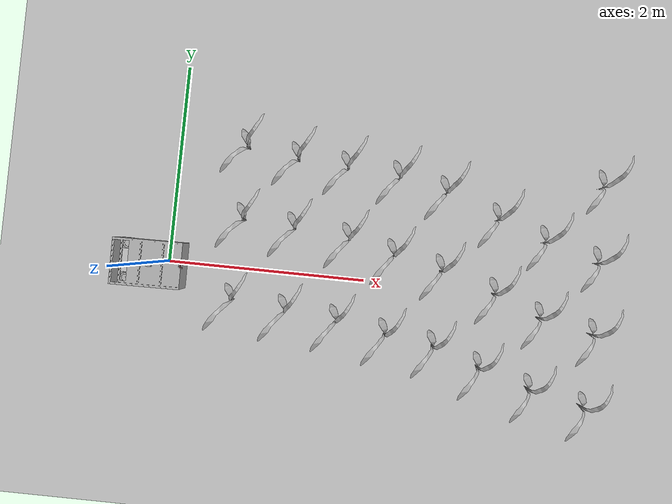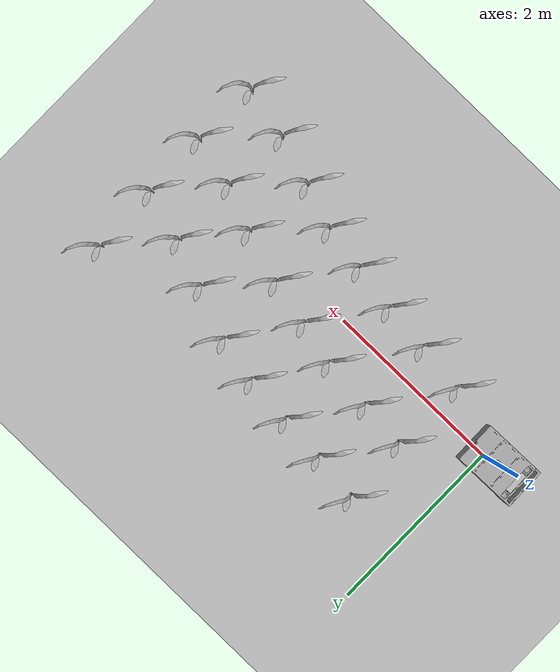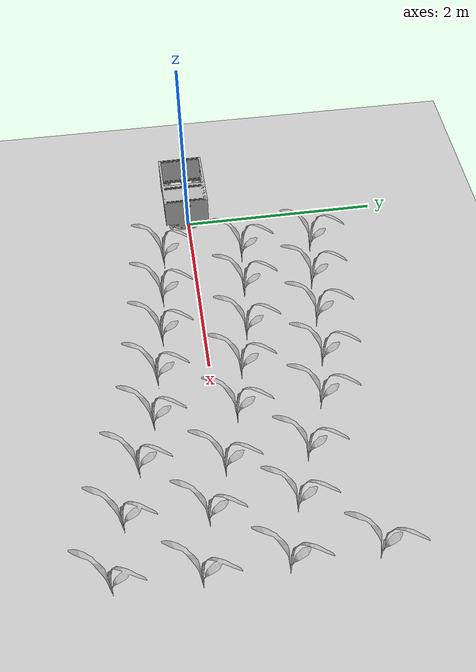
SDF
<sdf version="1.7">
 <world name="default">
  <model name="ground_plane">
   <static>1</static>
   <link name="link">
    <collision name="collision">
     <geometry><plane><normal>0 0 1</normal><size>100 100</size></plane></geometry>
     <surface><friction><ode><mu>100</mu><mu2>50</mu2></ode></friction></surface>
    </collision>
    <visual name="visual">
     <cast_shadows>0</cast_shadows>
     <geometry><plane><normal>0 0 1</normal><size>100 100</size></plane></geometry>
     <material>
      <script><uri>file://media/materials/scripts/gazebo.material</uri><name>Gazebo/Grey</name></script>
     </material>
    </visual>
   </link>
  </model>
  <model name="my_robot">
   <link name="base_footprint">
    <inertial>
     <pose>-0.019218 0.012213 0.292917 0 -0 0</pose>
     <mass>4.69185</mass>
     <inertia>
      <ixx>0.254815</ixx>
      <ixy>0.00014591</ixy>
      <ixz>-0.00762251</ixz>
      <iyy>0.300373</iyy>
      <iyz>0.000750303</iyz>
      <izz>0.302653</izz>
     </inertia>
    </inertial>
    <collision name="base_footprint_fixed_joint_lump__base_link_collision">
     <pose>0 0 0.25 0 -0 0</pose>
     <geometry>
      <mesh>
       <scale>1 1 1</scale>
       <uri>file:///home/tune65/robbie_ws/install/robbie_description/share/robbie_description/meshes/base_link.STL</uri>
      </mesh>
     </geometry>
    </collision>
    <collision name="base_footprint_fixed_joint_lump__camera_link_collision_1">
     <pose>0.295 0.012007 0.474506 0 -0 0</pose>
     <geometry>
      <mesh>
       <scale>1 1 1</scale>
       <uri>file:///home/tune65/robbie_ws/install/robbie_description/share/robbie_description/meshes/camera_link.STL</uri>
      </mesh>
     </geometry>
    </collision>
    <collision name="base_footprint_fixed_joint_lump__imu_link_collision_2">
     <pose>0 0 0.54 0 -0 0</pose>
     <geometry><box><size>0.03 0.03 0.03</size></box></geometry>
    </collision>
    <collision name="base_footprint_fixed_joint_lump__lidar_link_collision_3">
     <pose>0 0 0.58 0 -0 0</pose>
     <geometry><box><size>0.05 0.05 0.05</size></box></geometry>
    </collision>
    <visual name="base_footprint_fixed_joint_lump__base_link_visual">
     <pose>0 0 0.25 0 -0 0</pose>
     <geometry>
      <mesh>
       <scale>1 1 1</scale>
       <uri>file:///home/tune65/robbie_ws/install/robbie_description/share/robbie_description/meshes/base_link.STL</uri>
      </mesh>
     </geometry>
    </visual>
    <visual name="base_footprint_fixed_joint_lump__camera_link_visual_1">
     <pose>0.295 0.012007 0.474506 0 -0 0</pose>
     <geometry>
      <mesh>
       <scale>1 1 1</scale>
       <uri>file:///home/tune65/robbie_ws/install/robbie_description/share/robbie_description/meshes/camera_link.STL</uri>
      </mesh>
     </geometry>
     <material>
      <script><name>Gazebo/Red</name><uri>file://media/materials/scripts/gazebo.material</uri></script>
     </material>
    </visual>
    <visual name="base_footprint_fixed_joint_lump__imu_link_visual_2">
     <pose>0 0 0.54 0 -0 0</pose>
     <geometry><box><size>0.03 0.03 0.03</size></box></geometry>
    </visual>
    <visual name="base_footprint_fixed_joint_lump__lidar_link_visual_3">
     <pose>0 0 0.58 0 -0 0</pose>
     <geometry><box><size>0.05 0.05 0.05</size></box></geometry>
    </visual>
    <sensor name="camera_sensor" type="camera">
     <visualize>1</visualize>
     <update_rate>10</update_rate>
     <plugin name="camera_controller" filename="libgazebo_ros_camera.so">
      <frame_name>custom_frame</frame_name>
     </plugin>
     <pose>0.295 0.012007 0.474506 0 -0 0</pose>
     <camera>
      <horizontal_fov>1.047</horizontal_fov>
      <image><width>320</width><height>240</height></image>
      <clip><near>0.1</near><far>100</far></clip>
     </camera>
    </sensor>
    <sensor name="lidar" type="ray">
     <always_on>1</always_on>
     <visualize>1</visualize>
     <update_rate>5</update_rate>
     <ray>
      <scan>
       <horizontal>
        <samples>360</samples>
        <resolution>1</resolution>
        <min_angle>0</min_angle>
        <max_angle>6.28</max_angle>
       </horizontal>
       <vertical><samples>1</samples><min_angle>0</min_angle><max_angle>0</max_angle></vertical>
      </scan>
      <range><min>0.12</min><max>3.5</max><resolution>0.015</resolution></range>
      <noise><type>gaussian</type><mean>0</mean><stddev>0.01</stddev></noise>
     </ray>
     <plugin name="scan" filename="libgazebo_ros_ray_sensor.so">
      <ros><remapping>~/out:=scan</remapping></ros>
      <output_type>sensor_msgs/LaserScan</output_type>
      <frame_name>lidar_link</frame_name>
     </plugin>
     <pose>0 0 0.58 0 -0 0</pose>
    </sensor>
   </link>
   <joint name="castor_left_joint" type="revolute">
    <pose relative_to="base_footprint">-0.316 0.174 0.213 0 -0 0</pose>
    <parent>base_footprint</parent>
    <child>castor_left</child>
    <axis>
     <xyz>0 0 1</xyz>
     <limit><effort>10</effort><velocity>0</velocity><lower>-1e+16</lower><upper>1e+16</upper></limit>
     <dynamics><spring_reference>0</spring_reference><spring_stiffness>0</spring_stiffness></dynamics>
    </axis>
   </joint>
   <link name="castor_left">
    <pose relative_to="castor_left_joint">0 0 0 0 -0 0</pose>
    <inertial>
     <pose>-0.016038 -0.000361 -0.040846 0 -0 0</pose>
     <mass>0.175409</mass>
     <inertia>
      <ixx>0.000376266</ixx>
      <ixy>-4.08537e-08</ixy>
      <ixz>-8.33769e-05</ixz>
      <iyy>0.000367456</iyy>
      <iyz>-4.92639e-08</iyz>
      <izz>0.000322142</izz>
     </inertia>
    </inertial>
    <collision name="castor_left_collision">
     <geometry>
      <mesh>
       <scale>1 1 1</scale>
       <uri>file:///home/tune65/robbie_ws/install/robbie_description/share/robbie_description/meshes/castor_left.STL</uri>
      </mesh>
     </geometry>
    </collision>
    <visual name="castor_left_visual">
     <geometry>
      <mesh>
       <scale>1 1 1</scale>
       <uri>file:///home/tune65/robbie_ws/install/robbie_description/share/robbie_description/meshes/castor_left.STL</uri>
      </mesh>
     </geometry>
    </visual>
   </link>
   <joint name="left_rear_wheel_joint" type="revolute">
    <pose relative_to="castor_left">-0.056932 0.0425 -0.131998 1.5708 -0 0</pose>
    <parent>castor_left</parent>
    <child>left_rear_wheel</child>
    <axis>
     <xyz>0 0 -1</xyz>
     <limit><effort>10</effort><velocity>10</velocity><lower>-1e+16</lower><upper>1e+16</upper></limit>
     <dynamics>
      <damping>0.1</damping>
      <friction>0.1</friction>
      <spring_reference>0</spring_reference>
      <spring_stiffness>0</spring_stiffness>
     </dynamics>
    </axis>
   </joint>
   <link name="left_rear_wheel">
    <pose relative_to="left_rear_wheel_joint">0 0 0 0 -0 0</pose>
    <inertial>
     <pose>-3e-06 -1.6e-05 0.042496 0 -0 0</pose>
     <mass>0.977398</mass>
     <inertia>
      <ixx>0.00315278</ixx>
      <ixy>-2.63404e-06</ixy>
      <ixz>9.61305e-08</ixz>
      <iyy>0.00314549</iyy>
      <iyz>5.97873e-08</iyz>
      <izz>0.00595538</izz>
     </inertia>
    </inertial>
    <collision name="left_rear_wheel_collision">
     <geometry>
      <mesh>
       <scale>1 1 1</scale>
       <uri>file:///home/tune65/robbie_ws/install/robbie_description/share/robbie_description/meshes/left_rear_wheel.STL</uri>
      </mesh>
     </geometry>
    </collision>
    <visual name="left_rear_wheel_visual">
     <geometry>
      <mesh>
       <scale>1 1 1</scale>
       <uri>file:///home/tune65/robbie_ws/install/robbie_description/share/robbie_description/meshes/left_rear_wheel.STL</uri>
      </mesh>
     </geometry>
    </visual>
   </link>
   <joint name="castor_right_joint" type="revolute">
    <pose relative_to="base_footprint">-0.316 -0.174 0.213 0 -0 0</pose>
    <parent>base_footprint</parent>
    <child>castor_right</child>
    <axis>
     <xyz>0 0 1</xyz>
     <limit><effort>10</effort><velocity>0</velocity><lower>-1e+16</lower><upper>1e+16</upper></limit>
     <dynamics><spring_reference>0</spring_reference><spring_stiffness>0</spring_stiffness></dynamics>
    </axis>
   </joint>
   <link name="castor_right">
    <pose relative_to="castor_right_joint">0 0 0 0 -0 0</pose>
    <inertial>
     <pose>-0.016038 0.000348 -0.040846 0 -0 0</pose>
     <mass>0.175409</mass>
     <inertia>
      <ixx>0.000376266</ixx>
      <ixy>-4.08537e-08</ixy>
      <ixz>-8.33769e-05</ixz>
      <iyy>0.000367456</iyy>
      <iyz>-4.92634e-08</iyz>
      <izz>0.000322142</izz>
     </inertia>
    </inertial>
    <collision name="castor_right_collision">
     <geometry>
      <mesh>
       <scale>1 1 1</scale>
       <uri>file:///home/tune65/robbie_ws/install/robbie_description/share/robbie_description/meshes/castor_right.STL</uri>
      </mesh>
     </geometry>
    </collision>
    <visual name="castor_right_visual">
     <geometry>
      <mesh>
       <scale>1 1 1</scale>
       <uri>file:///home/tune65/robbie_ws/install/robbie_description/share/robbie_description/meshes/castor_right.STL</uri>
      </mesh>
     </geometry>
    </visual>
   </link>
   <joint name="right_rear_wheel_joint" type="revolute">
    <pose relative_to="castor_right">-0.056932 -0.0425 -0.131998 1.5708 -0 0</pose>
    <parent>castor_right</parent>
    <child>right_rear_wheel</child>
    <axis>
     <xyz>0 0 -1</xyz>
     <limit><effort>10</effort><velocity>10</velocity><lower>-1e+16</lower><upper>1e+16</upper></limit>
     <dynamics>
      <damping>0.1</damping>
      <friction>0.1</friction>
      <spring_reference>0</spring_reference>
      <spring_stiffness>0</spring_stiffness>
     </dynamics>
    </axis>
   </joint>
   <link name="right_rear_wheel">
    <pose relative_to="right_rear_wheel_joint">0 0 0 0 -0 0</pose>
    <inertial>
     <pose>1.6e-05 -3e-06 -0.042504 0 -0 0</pose>
     <mass>0.977397</mass>
     <inertia>
      <ixx>0.00314549</ixx>
      <ixy>2.63402e-06</ixy>
      <ixz>-5.97688e-08</ixz>
      <iyy>0.00315278</iyy>
      <iyz>9.61286e-08</iyz>
      <izz>0.00595538</izz>
     </inertia>
    </inertial>
    <collision name="right_rear_wheel_collision">
     <geometry>
      <mesh>
       <scale>1 1 1</scale>
       <uri>file:///home/tune65/robbie_ws/install/robbie_description/share/robbie_description/meshes/right_rear_wheel.STL</uri>
      </mesh>
     </geometry>
    </collision>
    <visual name="right_rear_wheel_visual">
     <geometry>
      <mesh>
       <scale>1 1 1</scale>
       <uri>file:///home/tune65/robbie_ws/install/robbie_description/share/robbie_description/meshes/right_rear_wheel.STL</uri>
      </mesh>
     </geometry>
    </visual>
   </link>
   <joint name="left_front_wheel_joint" type="revolute">
    <pose relative_to="base_footprint">0.072912 0.184125 0.083407 1.5708 -0 0</pose>
    <parent>base_footprint</parent>
    <child>left_front_wheel</child>
    <axis>
     <xyz>0 0 -1</xyz>
     <limit><effort>10</effort><velocity>10</velocity><lower>-1e+16</lower><upper>1e+16</upper></limit>
     <dynamics>
      <damping>0.1</damping>
      <friction>0.1</friction>
      <spring_reference>0</spring_reference>
      <spring_stiffness>0</spring_stiffness>
     </dynamics>
    </axis>
   </joint>
   <link name="left_front_wheel">
    <pose relative_to="left_front_wheel_joint">0 0 0 0 -0 0</pose>
    <inertial>
     <pose>-0 0 0.01992 0 -0 0</pose>
     <mass>0.947518</mass>
     <inertia>
      <ixx>0.0026353</ixx>
      <ixy>2.50703e-12</ixy>
      <ixz>-2.04438e-13</ixz>
      <iyy>0.0026353</iyy>
      <iyz>1.15655e-14</iyz>
      <izz>0.00501071</izz>
     </inertia>
    </inertial>
    <collision name="left_front_wheel_collision">
     <geometry>
      <mesh>
       <scale>1 1 1</scale>
       <uri>file:///home/tune65/robbie_ws/install/robbie_description/share/robbie_description/meshes/left_front_wheel.STL</uri>
      </mesh>
     </geometry>
    </collision>
    <visual name="left_front_wheel_visual">
     <geometry>
      <mesh>
       <scale>1 1 1</scale>
       <uri>file:///home/tune65/robbie_ws/install/robbie_description/share/robbie_description/meshes/left_front_wheel.STL</uri>
      </mesh>
     </geometry>
    </visual>
   </link>
   <joint name="right_front_wheel_joint" type="revolute">
    <pose relative_to="base_footprint">0.072912 -0.184125 0.083407 1.5708 -0 0</pose>
    <parent>base_footprint</parent>
    <child>right_front_wheel</child>
    <axis>
     <xyz>0 0 -1</xyz>
     <limit><effort>10</effort><velocity>10</velocity><lower>-1e+16</lower><upper>1e+16</upper></limit>
     <dynamics>
      <damping>0.1</damping>
      <friction>0.1</friction>
      <spring_reference>0</spring_reference>
      <spring_stiffness>0</spring_stiffness>
     </dynamics>
    </axis>
   </joint>
   <link name="right_front_wheel">
    <pose relative_to="right_front_wheel_joint">0 0 0 0 -0 0</pose>
    <inertial>
     <pose>0 0 -0.01992 0 -0 0</pose>
     <mass>0.947518</mass>
     <inertia>
      <ixx>0.0026353</ixx>
      <ixy>-3.66849e-13</ixy>
      <ixz>-1.92247e-13</ixz>
      <iyy>0.0026353</iyy>
      <iyz>-7.04969e-14</iyz>
      <izz>0.00501071</izz>
     </inertia>
    </inertial>
    <collision name="right_front_wheel_collision">
     <geometry>
      <mesh>
       <scale>1 1 1</scale>
       <uri>file:///home/tune65/robbie_ws/install/robbie_description/share/robbie_description/meshes/right_front_wheel.STL</uri>
      </mesh>
     </geometry>
    </collision>
    <visual name="right_front_wheel_visual">
     <geometry>
      <mesh>
       <scale>1 1 1</scale>
       <uri>file:///home/tune65/robbie_ws/install/robbie_description/share/robbie_description/meshes/right_front_wheel.STL</uri>
      </mesh>
     </geometry>
    </visual>
   </link>
   <plugin name="diff_drive_controller" filename="libgazebo_ros_diff_drive.so">
    <update_rate>50</update_rate>
    <left_joint>left_front_wheel_joint</left_joint>
    <right_joint>right_front_wheel_joint</right_joint>
    <wheel_separation>0.33282</wheel_separation>
    <wheel_diameter>0.19</wheel_diameter>
    <publish_odom>1</publish_odom>
    <publish_odom_tf>1</publish_odom_tf>
    <publish_wheel_tf>1</publish_wheel_tf>
    <odometry_topic>/odom</odometry_topic>
    <odometry_frame>odom</odometry_frame>
    <robot_base_frame>base_footprint</robot_base_frame>
   </plugin>
   <static>0</static>
   <plugin name="gazebo_ros_joint_state_publisher" filename="libgazebo_ros_joint_state_publisher.so">
    <update_rate>100</update_rate>
    <joint_name>castor_left_joint</joint_name>
    <joint_name>castor_right_joint</joint_name>
    <joint_name>left_rear_wheel_joint</joint_name>
    <joint_name>right_rear_wheel_joint</joint_name>
   </plugin>
   <pose>-0.065814 -0.022522 0.01452 2.8e-05 0.015174 0.0131</pose>
  </model>
  <model name="field_row_full_double">
   <model name="maize_02">
    <pose>-4.84632 -3.95774 0.000249 0 -0 0</pose>
    <link name="maize_02_link">
     <inertial>
      <pose>0 0 0.01 0 -0 0</pose>
      <mass>0.3</mass>
      <inertia>
       <ixx>0.00334167</ixx>
       <ixy>0</ixy>
       <ixz>0</ixz>
       <iyy>0.00334167</iyy>
       <iyz>0</iyz>
       <izz>1.66667e-05</izz>
      </inertia>
      <pose>0 0 0.1 0 -0 0</pose>
     </inertial>
     <collision name="collision">
      <pose>0 0 0.2 0 -0 0</pose>
      <geometry><box><size>0.02 0.02 0.4</size></box></geometry>
      <surface><friction><ode><mu>10</mu><mu2>10</mu2></ode></friction></surface>
     </collision>
     <visual name="visual">
      <geometry>
       <mesh><uri>model://maize_02/meshes/maize_02.dae</uri><scale>0.683166 0.683166 0.683166</scale></mesh>
      </geometry>
     </visual>
    </link>
   </model>
   <model name="maize_02_clone">
    <pose>-4.3125 -4.01112 0.000249 0 -0 0</pose>
    <link name="maize_02_link">
     <inertial>
      <pose>0 0 0.01 0 -0 0</pose>
      <mass>0.3</mass>
      <inertia>
       <ixx>0.00334167</ixx>
       <ixy>0</ixy>
       <ixz>0</ixz>
       <iyy>0.00334167</iyy>
       <iyz>0</iyz>
       <izz>1.66667e-05</izz>
      </inertia>
      <pose>0 0 0.1 0 -0 0</pose>
     </inertial>
     <collision name="collision">
      <pose>0 0 0.2 0 -0 0</pose>
      <geometry><box><size>0.02 0.02 0.4</size></box></geometry>
      <surface><friction><ode><mu>10</mu><mu2>10</mu2></ode></friction></surface>
     </collision>
     <visual name="visual">
      <geometry>
       <mesh><uri>model://maize_02/meshes/maize_02.dae</uri><scale>0.683166 0.683166 0.683166</scale></mesh>
      </geometry>
     </visual>
    </link>
   </model>
   <model name="maize_02_clone_0">
    <pose>-3.80156 -4.05688 0.000249 0 -0 0</pose>
    <link name="maize_02_link">
     <inertial>
      <pose>0 0 0.01 0 -0 0</pose>
      <mass>0.3</mass>
      <inertia>
       <ixx>0.00334167</ixx>
       <ixy>0</ixy>
       <ixz>0</ixz>
       <iyy>0.00334167</iyy>
       <iyz>0</iyz>
       <izz>1.66667e-05</izz>
      </inertia>
      <pose>0 0 0.1 0 -0 0</pose>
     </inertial>
     <collision name="collision">
      <pose>0 0 0.2 0 -0 0</pose>
      <geometry><box><size>0.02 0.02 0.4</size></box></geometry>
      <surface><friction><ode><mu>10</mu><mu2>10</mu2></ode></friction></surface>
     </collision>
     <visual name="visual">
      <geometry>
       <mesh><uri>model://maize_02/meshes/maize_02.dae</uri><scale>0.683166 0.683166 0.683166</scale></mesh>
      </geometry>
     </visual>
    </link>
   </model>
   <model name="maize_02_clone_1">
    <pose>-3.30717 -4.14016 0.000249 0 -0 0</pose>
    <link name="maize_02_link">
     <inertial>
      <pose>0 0 0.01 0 -0 0</pose>
      <mass>0.3</mass>
      <inertia>
       <ixx>0.00334167</ixx>
       <ixy>0</ixy>
       <ixz>0</ixz>
       <iyy>0.00334167</iyy>
       <iyz>0</iyz>
       <izz>1.66667e-05</izz>
      </inertia>
      <pose>0 0 0.1 0 -0 0</pose>
     </inertial>
     <collision name="collision">
      <pose>0 0 0.2 0 -0 0</pose>
      <geometry><box><size>0.02 0.02 0.4</size></box></geometry>
      <surface><friction><ode><mu>10</mu><mu2>10</mu2></ode></friction></surface>
     </collision>
     <visual name="visual">
      <geometry>
       <mesh><uri>model://maize_02/meshes/maize_02.dae</uri><scale>0.683166 0.683166 0.683166</scale></mesh>
      </geometry>
     </visual>
    </link>
   </model>
   <model name="maize_02_clone_10">
    <pose>-1.25683 -3.93716 0.000249 0 -0 0</pose>
    <link name="maize_02_link">
     <inertial>
      <pose>0 0 0.01 0 -0 0</pose>
      <mass>0.3</mass>
      <inertia>
       <ixx>0.00334167</ixx>
       <ixy>0</ixy>
       <ixz>0</ixz>
       <iyy>0.00334167</iyy>
       <iyz>0</iyz>
       <izz>1.66667e-05</izz>
      </inertia>
      <pose>0 0 0.1 0 -0 0</pose>
     </inertial>
     <collision name="collision">
      <pose>0 0 0.2 0 -0 0</pose>
      <geometry><box><size>0.02 0.02 0.4</size></box></geometry>
      <surface><friction><ode><mu>10</mu><mu2>10</mu2></ode></friction></surface>
     </collision>
     <visual name="visual">
      <geometry>
       <mesh><uri>model://maize_02/meshes/maize_02.dae</uri><scale>0.683166 0.683166 0.683166</scale></mesh>
      </geometry>
     </visual>
    </link>
   </model>
   <model name="maize_02_clone_11">
    <pose>-1.79479 -3.8255 0.000249 0 -0 0</pose>
    <link name="maize_02_link">
     <inertial>
      <pose>0 0 0.01 0 -0 0</pose>
      <mass>0.3</mass>
      <inertia>
       <ixx>0.00334167</ixx>
       <ixy>0</ixy>
       <ixz>0</ixz>
       <iyy>0.00334167</iyy>
       <iyz>0</iyz>
       <izz>1.66667e-05</izz>
      </inertia>
      <pose>0 0 0.1 0 -0 0</pose>
     </inertial>
     <collision name="collision">
      <pose>0 0 0.2 0 -0 0</pose>
      <geometry><box><size>0.02 0.02 0.4</size></box></geometry>
      <surface><friction><ode><mu>10</mu><mu2>10</mu2></ode></friction></surface>
     </collision>
     <visual name="visual">
      <geometry>
       <mesh><uri>model://maize_02/meshes/maize_02.dae</uri><scale>0.683166 0.683166 0.683166</scale></mesh>
      </geometry>
     </visual>
    </link>
   </model>
   <model name="maize_02_clone_12">
    <pose>-2.2617 -3.63265 0.000249 0 -0 0</pose>
    <link name="maize_02_link">
     <inertial>
      <pose>0 0 0.01 0 -0 0</pose>
      <mass>0.3</mass>
      <inertia>
       <ixx>0.00334167</ixx>
       <ixy>0</ixy>
       <ixz>0</ixz>
       <iyy>0.00334167</iyy>
       <iyz>0</iyz>
       <izz>1.66667e-05</izz>
      </inertia>
      <pose>0 0 0.1 0 -0 0</pose>
     </inertial>
     <collision name="collision">
      <pose>0 0 0.2 0 -0 0</pose>
      <geometry><box><size>0.02 0.02 0.4</size></box></geometry>
      <surface><friction><ode><mu>10</mu><mu2>10</mu2></ode></friction></surface>
     </collision>
     <visual name="visual">
      <geometry>
       <mesh><uri>model://maize_02/meshes/maize_02.dae</uri><scale>0.683166 0.683166 0.683166</scale></mesh>
      </geometry>
     </visual>
    </link>
   </model>
   <model name="maize_02_clone_13">
    <pose>-2.80981 -3.4601 0.000249 0 -0 0</pose>
    <link name="maize_02_link">
     <inertial>
      <pose>0 0 0.01 0 -0 0</pose>
      <mass>0.3</mass>
      <inertia>
       <ixx>0.00334167</ixx>
       <ixy>0</ixy>
       <ixz>0</ixz>
       <iyy>0.00334167</iyy>
       <iyz>0</iyz>
       <izz>1.66667e-05</izz>
      </inertia>
      <pose>0 0 0.1 0 -0 0</pose>
     </inertial>
     <collision name="collision">
      <pose>0 0 0.2 0 -0 0</pose>
      <geometry><box><size>0.02 0.02 0.4</size></box></geometry>
      <surface><friction><ode><mu>10</mu><mu2>10</mu2></ode></friction></surface>
     </collision>
     <visual name="visual">
      <geometry>
       <mesh><uri>model://maize_02/meshes/maize_02.dae</uri><scale>0.683166 0.683166 0.683166</scale></mesh>
      </geometry>
     </visual>
    </link>
   </model>
   <model name="maize_02_clone_14">
    <pose>-3.29702 -3.3586 0.000249 0 -0 0</pose>
    <link name="maize_02_link">
     <inertial>
      <pose>0 0 0.01 0 -0 0</pose>
      <mass>0.3</mass>
      <inertia>
       <ixx>0.00334167</ixx>
       <ixy>0</ixy>
       <ixz>0</ixz>
       <iyy>0.00334167</iyy>
       <iyz>0</iyz>
       <izz>1.66667e-05</izz>
      </inertia>
      <pose>0 0 0.1 0 -0 0</pose>
     </inertial>
     <collision name="collision">
      <pose>0 0 0.2 0 -0 0</pose>
      <geometry><box><size>0.02 0.02 0.4</size></box></geometry>
      <surface><friction><ode><mu>10</mu><mu2>10</mu2></ode></friction></surface>
     </collision>
     <visual name="visual">
      <geometry>
       <mesh><uri>model://maize_02/meshes/maize_02.dae</uri><scale>0.683166 0.683166 0.683166</scale></mesh>
      </geometry>
     </visual>
    </link>
   </model>
   <model name="maize_02_clone_15">
    <pose>-3.75377 -3.24694 0.000249 0 -0 0</pose>
    <link name="maize_02_link">
     <inertial>
      <pose>0 0 0.01 0 -0 0</pose>
      <mass>0.3</mass>
      <inertia>
       <ixx>0.00334167</ixx>
       <ixy>0</ixy>
       <ixz>0</ixz>
       <iyy>0.00334167</iyy>
       <iyz>0</iyz>
       <izz>1.66667e-05</izz>
      </inertia>
      <pose>0 0 0.1 0 -0 0</pose>
     </inertial>
     <collision name="collision">
      <pose>0 0 0.2 0 -0 0</pose>
      <geometry><box><size>0.02 0.02 0.4</size></box></geometry>
      <surface><friction><ode><mu>10</mu><mu2>10</mu2></ode></friction></surface>
     </collision>
     <visual name="visual">
      <geometry>
       <mesh><uri>model://maize_02/meshes/maize_02.dae</uri><scale>0.683166 0.683166 0.683166</scale></mesh>
      </geometry>
     </visual>
    </link>
   </model>
   <model name="maize_02_clone_16">
    <pose>-4.30188 -3.19619 0.000249 0 -0 0</pose>
    <link name="maize_02_link">
     <inertial>
      <pose>0 0 0.01 0 -0 0</pose>
      <mass>0.3</mass>
      <inertia>
       <ixx>0.00334167</ixx>
       <ixy>0</ixy>
       <ixz>0</ixz>
       <iyy>0.00334167</iyy>
       <iyz>0</iyz>
       <izz>1.66667e-05</izz>
      </inertia>
      <pose>0 0 0.1 0 -0 0</pose>
     </inertial>
     <collision name="collision">
      <pose>0 0 0.2 0 -0 0</pose>
      <geometry><box><size>0.02 0.02 0.4</size></box></geometry>
      <surface><friction><ode><mu>10</mu><mu2>10</mu2></ode></friction></surface>
     </collision>
     <visual name="visual">
      <geometry>
       <mesh><uri>model://maize_02/meshes/maize_02.dae</uri><scale>0.683166 0.683166 0.683166</scale></mesh>
      </geometry>
     </visual>
    </link>
   </model>
   <model name="maize_02_clone_17">
    <pose>-4.80939 -3.15559 0.000249 0 -0 0</pose>
    <link name="maize_02_link">
     <inertial>
      <pose>0 0 0.01 0 -0 0</pose>
      <mass>0.3</mass>
      <inertia>
       <ixx>0.00334167</ixx>
       <ixy>0</ixy>
       <ixz>0</ixz>
       <iyy>0.00334167</iyy>
       <iyz>0</iyz>
       <izz>1.66667e-05</izz>
      </inertia>
      <pose>0 0 0.1 0 -0 0</pose>
     </inertial>
     <collision name="collision">
      <pose>0 0 0.2 0 -0 0</pose>
      <geometry><box><size>0.02 0.02 0.4</size></box></geometry>
      <surface><friction><ode><mu>10</mu><mu2>10</mu2></ode></friction></surface>
     </collision>
     <visual name="visual">
      <geometry>
       <mesh><uri>model://maize_02/meshes/maize_02.dae</uri><scale>0.683166 0.683166 0.683166</scale></mesh>
      </geometry>
     </visual>
    </link>
   </model>
   <model name="maize_02_clone_2">
    <pose>-2.81996 -4.21121 0.000249 0 -0 0</pose>
    <link name="maize_02_link">
     <inertial>
      <pose>0 0 0.01 0 -0 0</pose>
      <mass>0.3</mass>
      <inertia>
       <ixx>0.00334167</ixx>
       <ixy>0</ixy>
       <ixz>0</ixz>
       <iyy>0.00334167</iyy>
       <iyz>0</iyz>
       <izz>1.66667e-05</izz>
      </inertia>
      <pose>0 0 0.1 0 -0 0</pose>
     </inertial>
     <collision name="collision">
      <pose>0 0 0.2 0 -0 0</pose>
      <geometry><box><size>0.02 0.02 0.4</size></box></geometry>
      <surface><friction><ode><mu>10</mu><mu2>10</mu2></ode></friction></surface>
     </collision>
     <visual name="visual">
      <geometry>
       <mesh><uri>model://maize_02/meshes/maize_02.dae</uri><scale>0.683166 0.683166 0.683166</scale></mesh>
      </geometry>
     </visual>
    </link>
   </model>
   <model name="maize_02_clone_20">
    <pose>-1.27713 -3.22664 0.000249 0 -0 0</pose>
    <link name="maize_02_link">
     <inertial>
      <pose>0 0 0.01 0 -0 0</pose>
      <mass>0.3</mass>
      <inertia>
       <ixx>0.00334167</ixx>
       <ixy>0</ixy>
       <ixz>0</ixz>
       <iyy>0.00334167</iyy>
       <iyz>0</iyz>
       <izz>1.66667e-05</izz>
      </inertia>
      <pose>0 0 0.1 0 -0 0</pose>
     </inertial>
     <collision name="collision">
      <pose>0 0 0.2 0 -0 0</pose>
      <geometry><box><size>0.02 0.02 0.4</size></box></geometry>
      <surface><friction><ode><mu>10</mu><mu2>10</mu2></ode></friction></surface>
     </collision>
     <visual name="visual">
      <geometry>
       <mesh><uri>model://maize_02/meshes/maize_02.dae</uri><scale>0.683166 0.683166 0.683166</scale></mesh>
      </geometry>
     </visual>
    </link>
   </model>
   <model name="maize_02_clone_21">
    <pose>-1.81509 -3.07439 0.000249 0 -0 0</pose>
    <link name="maize_02_link">
     <inertial>
      <pose>0 0 0.01 0 -0 0</pose>
      <mass>0.3</mass>
      <inertia>
       <ixx>0.00334167</ixx>
       <ixy>0</ixy>
       <ixz>0</ixz>
       <iyy>0.00334167</iyy>
       <iyz>0</iyz>
       <izz>1.66667e-05</izz>
      </inertia>
      <pose>0 0 0.1 0 -0 0</pose>
     </inertial>
     <collision name="collision">
      <pose>0 0 0.2 0 -0 0</pose>
      <geometry><box><size>0.02 0.02 0.4</size></box></geometry>
      <surface><friction><ode><mu>10</mu><mu2>10</mu2></ode></friction></surface>
     </collision>
     <visual name="visual">
      <geometry>
       <mesh><uri>model://maize_02/meshes/maize_02.dae</uri><scale>0.683166 0.683166 0.683166</scale></mesh>
      </geometry>
     </visual>
    </link>
   </model>
   <model name="maize_02_clone_22">
    <pose>-2.3023 -2.90184 0.000249 0 -0 0</pose>
    <link name="maize_02_link">
     <inertial>
      <pose>0 0 0.01 0 -0 0</pose>
      <mass>0.3</mass>
      <inertia>
       <ixx>0.00334167</ixx>
       <ixy>0</ixy>
       <ixz>0</ixz>
       <iyy>0.00334167</iyy>
       <iyz>0</iyz>
       <izz>1.66667e-05</izz>
      </inertia>
      <pose>0 0 0.1 0 -0 0</pose>
     </inertial>
     <collision name="collision">
      <pose>0 0 0.2 0 -0 0</pose>
      <geometry><box><size>0.02 0.02 0.4</size></box></geometry>
      <surface><friction><ode><mu>10</mu><mu2>10</mu2></ode></friction></surface>
     </collision>
     <visual name="visual">
      <geometry>
       <mesh><uri>model://maize_02/meshes/maize_02.dae</uri><scale>0.683166 0.683166 0.683166</scale></mesh>
      </geometry>
     </visual>
    </link>
   </model>
   <model name="maize_02_clone_23">
    <pose>-2.84026 -2.68868 0.000249 0 -0 0</pose>
    <link name="maize_02_link">
     <inertial>
      <pose>0 0 0.01 0 -0 0</pose>
      <mass>0.3</mass>
      <inertia>
       <ixx>0.00334167</ixx>
       <ixy>0</ixy>
       <ixz>0</ixz>
       <iyy>0.00334167</iyy>
       <iyz>0</iyz>
       <izz>1.66667e-05</izz>
      </inertia>
      <pose>0 0 0.1 0 -0 0</pose>
     </inertial>
     <collision name="collision">
      <pose>0 0 0.2 0 -0 0</pose>
      <geometry><box><size>0.02 0.02 0.4</size></box></geometry>
      <surface><friction><ode><mu>10</mu><mu2>10</mu2></ode></friction></surface>
     </collision>
     <visual name="visual">
      <geometry>
       <mesh><uri>model://maize_02/meshes/maize_02.dae</uri><scale>0.683166 0.683166 0.683166</scale></mesh>
      </geometry>
     </visual>
    </link>
   </model>
   <model name="maize_02_clone_24">
    <pose>-3.31731 -2.58718 0.000249 0 -0 0</pose>
    <link name="maize_02_link">
     <inertial>
      <pose>0 0 0.01 0 -0 0</pose>
      <mass>0.3</mass>
      <inertia>
       <ixx>0.00334167</ixx>
       <ixy>0</ixy>
       <ixz>0</ixz>
       <iyy>0.00334167</iyy>
       <iyz>0</iyz>
       <izz>1.66667e-05</izz>
      </inertia>
      <pose>0 0 0.1 0 -0 0</pose>
     </inertial>
     <collision name="collision">
      <pose>0 0 0.2 0 -0 0</pose>
      <geometry><box><size>0.02 0.02 0.4</size></box></geometry>
      <surface><friction><ode><mu>10</mu><mu2>10</mu2></ode></friction></surface>
     </collision>
     <visual name="visual">
      <geometry>
       <mesh><uri>model://maize_02/meshes/maize_02.dae</uri><scale>0.683166 0.683166 0.683166</scale></mesh>
      </geometry>
     </visual>
    </link>
   </model>
   <model name="maize_02_clone_25">
    <pose>-3.83498 -2.54658 0.000249 0 -0 0</pose>
    <link name="maize_02_link">
     <inertial>
      <pose>0 0 0.01 0 -0 0</pose>
      <mass>0.3</mass>
      <inertia>
       <ixx>0.00334167</ixx>
       <ixy>0</ixy>
       <ixz>0</ixz>
       <iyy>0.00334167</iyy>
       <iyz>0</iyz>
       <izz>1.66667e-05</izz>
      </inertia>
      <pose>0 0 0.1 0 -0 0</pose>
     </inertial>
     <collision name="collision">
      <pose>0 0 0.2 0 -0 0</pose>
      <geometry><box><size>0.02 0.02 0.4</size></box></geometry>
      <surface><friction><ode><mu>10</mu><mu2>10</mu2></ode></friction></surface>
     </collision>
     <visual name="visual">
      <geometry>
       <mesh><uri>model://maize_02/meshes/maize_02.dae</uri><scale>0.683166 0.683166 0.683166</scale></mesh>
      </geometry>
     </visual>
    </link>
   </model>
   <model name="maize_02_clone_26">
    <pose>-4.33233 -2.50598 0.000249 0 -0 0</pose>
    <link name="maize_02_link">
     <inertial>
      <pose>0 0 0.01 0 -0 0</pose>
      <mass>0.3</mass>
      <inertia>
       <ixx>0.00334167</ixx>
       <ixy>0</ixy>
       <ixz>0</ixz>
       <iyy>0.00334167</iyy>
       <iyz>0</iyz>
       <izz>1.66667e-05</izz>
      </inertia>
      <pose>0 0 0.1 0 -0 0</pose>
     </inertial>
     <collision name="collision">
      <pose>0 0 0.2 0 -0 0</pose>
      <geometry><box><size>0.02 0.02 0.4</size></box></geometry>
      <surface><friction><ode><mu>10</mu><mu2>10</mu2></ode></friction></surface>
     </collision>
     <visual name="visual">
      <geometry>
       <mesh><uri>model://maize_02/meshes/maize_02.dae</uri><scale>0.683166 0.683166 0.683166</scale></mesh>
      </geometry>
     </visual>
    </link>
   </model>
   <model name="maize_02_clone_27">
    <pose>-4.83984 -2.43493 0.000249 0 -0 0</pose>
    <link name="maize_02_link">
     <inertial>
      <pose>0 0 0.01 0 -0 0</pose>
      <mass>0.3</mass>
      <inertia>
       <ixx>0.00334167</ixx>
       <ixy>0</ixy>
       <ixz>0</ixz>
       <iyy>0.00334167</iyy>
       <iyz>0</iyz>
       <izz>1.66667e-05</izz>
      </inertia>
      <pose>0 0 0.1 0 -0 0</pose>
     </inertial>
     <collision name="collision">
      <pose>0 0 0.2 0 -0 0</pose>
      <geometry><box><size>0.02 0.02 0.4</size></box></geometry>
      <surface><friction><ode><mu>10</mu><mu2>10</mu2></ode></friction></surface>
     </collision>
     <visual name="visual">
      <geometry>
       <mesh><uri>model://maize_02/meshes/maize_02.dae</uri><scale>0.683166 0.683166 0.683166</scale></mesh>
      </geometry>
     </visual>
    </link>
   </model>
   <model name="maize_02_clone_3">
    <pose>-2.35305 -4.37361 0.000249 0 -0 0</pose>
    <link name="maize_02_link">
     <inertial>
      <pose>0 0 0.01 0 -0 0</pose>
      <mass>0.3</mass>
      <inertia>
       <ixx>0.00334167</ixx>
       <ixy>0</ixy>
       <ixz>0</ixz>
       <iyy>0.00334167</iyy>
       <iyz>0</iyz>
       <izz>1.66667e-05</izz>
      </inertia>
      <pose>0 0 0.1 0 -0 0</pose>
     </inertial>
     <collision name="collision">
      <pose>0 0 0.2 0 -0 0</pose>
      <geometry><box><size>0.02 0.02 0.4</size></box></geometry>
      <surface><friction><ode><mu>10</mu><mu2>10</mu2></ode></friction></surface>
     </collision>
     <visual name="visual">
      <geometry>
       <mesh><uri>model://maize_02/meshes/maize_02.dae</uri><scale>0.683166 0.683166 0.683166</scale></mesh>
      </geometry>
     </visual>
    </link>
   </model>
   <model name="maize_02_clone_35">
    <pose>-1.29743 -2.47553 0.000249 0 -0 0</pose>
    <link name="maize_02_link">
     <inertial>
      <pose>0 0 0.01 0 -0 0</pose>
      <mass>0.3</mass>
      <inertia>
       <ixx>0.00334167</ixx>
       <ixy>0</ixy>
       <ixz>0</ixz>
       <iyy>0.00334167</iyy>
       <iyz>0</iyz>
       <izz>1.66667e-05</izz>
      </inertia>
      <pose>0 0 0.1 0 -0 0</pose>
     </inertial>
     <collision name="collision">
      <pose>0 0 0.2 0 -0 0</pose>
      <geometry><box><size>0.02 0.02 0.4</size></box></geometry>
      <surface><friction><ode><mu>10</mu><mu2>10</mu2></ode></friction></surface>
     </collision>
     <visual name="visual">
      <geometry>
       <mesh><uri>model://maize_02/meshes/maize_02.dae</uri><scale>0.683166 0.683166 0.683166</scale></mesh>
      </geometry>
     </visual>
    </link>
   </model>
   <model name="maize_02_clone_4">
    <pose>-1.83539 -4.53602 0.000249 0 -0 0</pose>
    <link name="maize_02_link">
     <inertial>
      <pose>0 0 0.01 0 -0 0</pose>
      <mass>0.3</mass>
      <inertia>
       <ixx>0.00334167</ixx>
       <ixy>0</ixy>
       <ixz>0</ixz>
       <iyy>0.00334167</iyy>
       <iyz>0</iyz>
       <izz>1.66667e-05</izz>
      </inertia>
      <pose>0 0 0.1 0 -0 0</pose>
     </inertial>
     <collision name="collision">
      <pose>0 0 0.2 0 -0 0</pose>
      <geometry><box><size>0.02 0.02 0.4</size></box></geometry>
      <surface><friction><ode><mu>10</mu><mu2>10</mu2></ode></friction></surface>
     </collision>
     <visual name="visual">
      <geometry>
       <mesh><uri>model://maize_02/meshes/maize_02.dae</uri><scale>0.683166 0.683166 0.683166</scale></mesh>
      </geometry>
     </visual>
    </link>
   </model>
   <model name="maize_02_clone_5">
    <pose>-1.28728 -4.65782 0.000249 0 -0 0</pose>
    <link name="maize_02_link">
     <inertial>
      <pose>0 0 0.01 0 -0 0</pose>
      <mass>0.3</mass>
      <inertia>
       <ixx>0.00334167</ixx>
       <ixy>0</ixy>
       <ixz>0</ixz>
       <iyy>0.00334167</iyy>
       <iyz>0</iyz>
       <izz>1.66667e-05</izz>
      </inertia>
      <pose>0 0 0.1 0 -0 0</pose>
     </inertial>
     <collision name="collision">
      <pose>0 0 0.2 0 -0 0</pose>
      <geometry><box><size>0.02 0.02 0.4</size></box></geometry>
      <surface><friction><ode><mu>10</mu><mu2>10</mu2></ode></friction></surface>
     </collision>
     <visual name="visual">
      <geometry>
       <mesh><uri>model://maize_02/meshes/maize_02.dae</uri><scale>0.683166 0.683166 0.683166</scale></mesh>
      </geometry>
     </visual>
    </link>
   </model>
   <static>0</static>
   <pose>5.56713 3.64301 0.082023 -0 -3e-06 -0.000638</pose>
  </model>
 </world>
</sdf>
